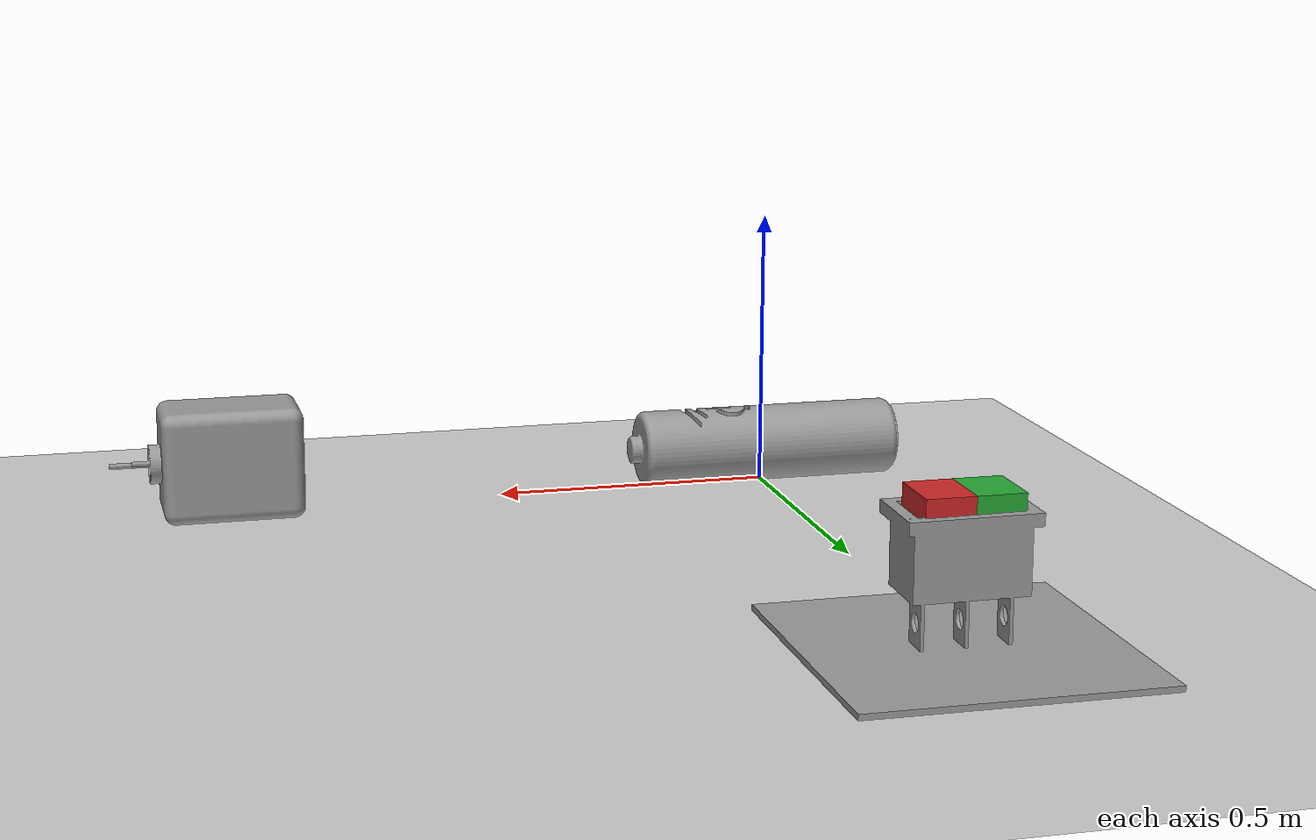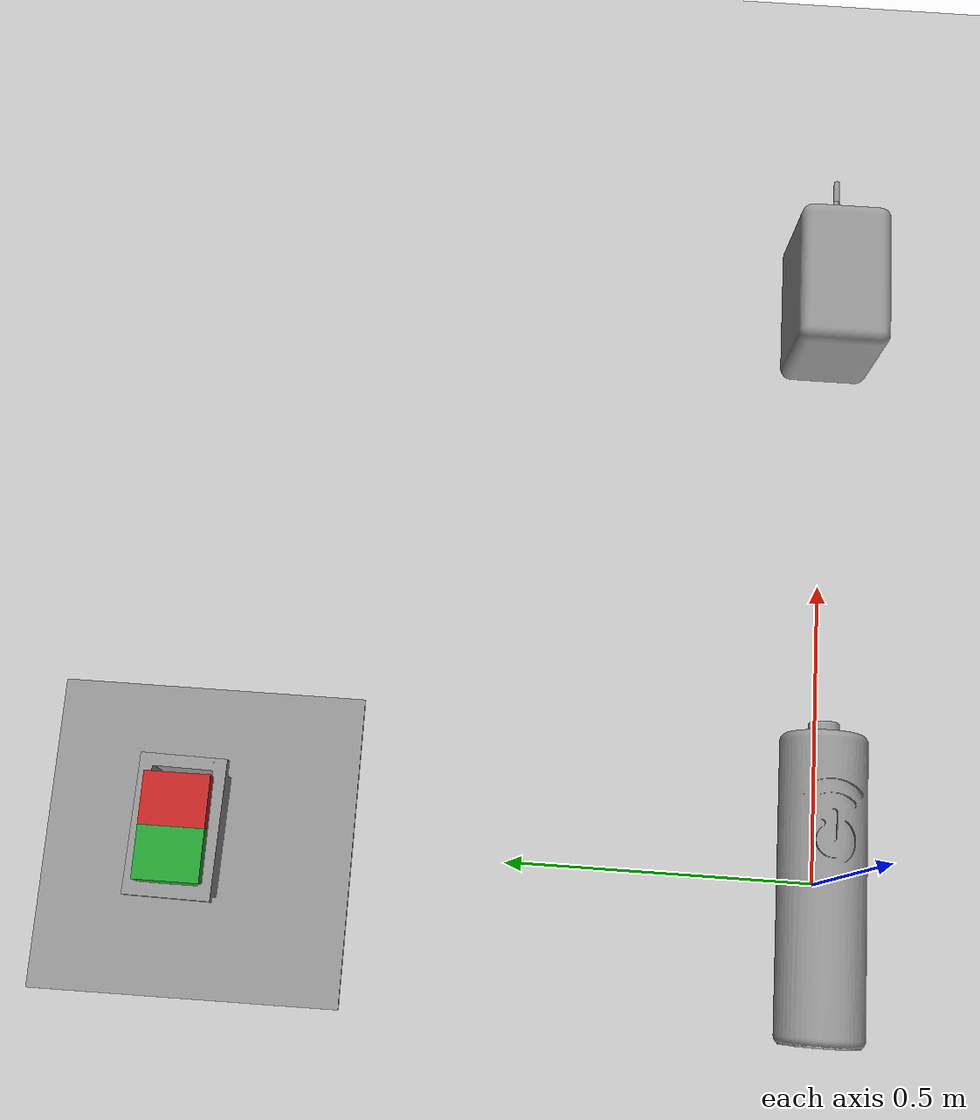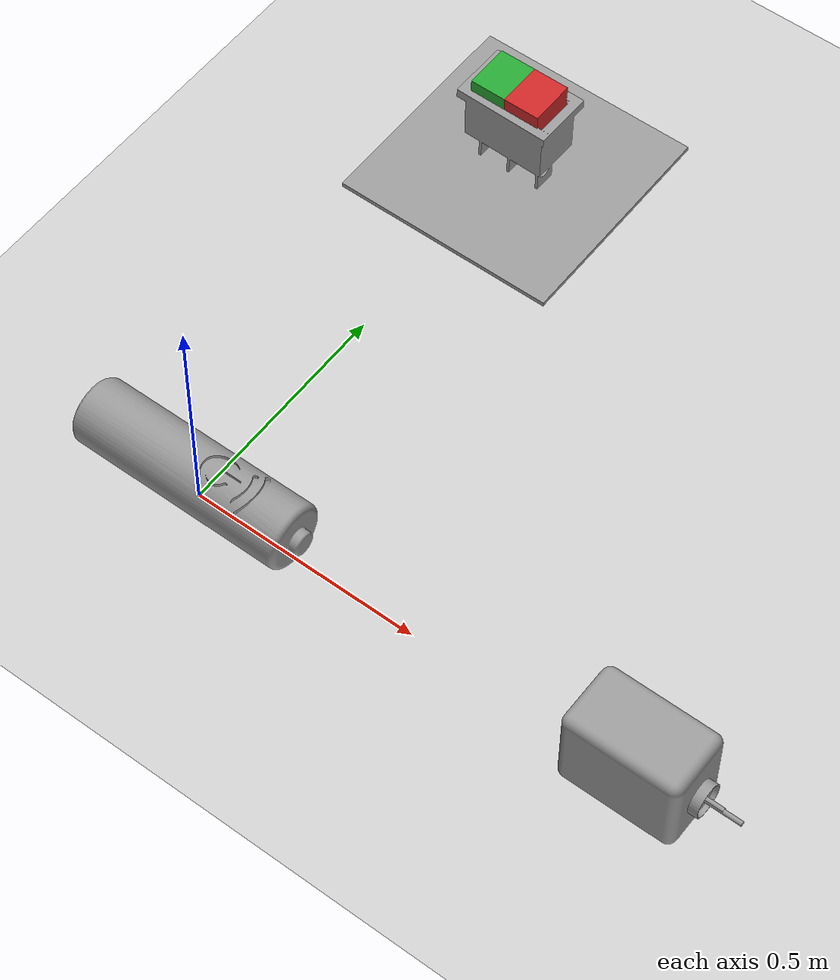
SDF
<?xml version="1.0" ?>
<sdf version="1.5">
  <world name="default">

    <!-- A global light source -->
    <include>
      <uri>model://sun</uri>
    </include>

    <!-- A ground plane -->
    <include>
      <uri>model://ground_plane</uri>
    </include>

    <model name="circuit">

      <link name="circuit_link">
        <collision name="circuit_collision">
          <pose>0 0 0.05 0 0 0</pose>
          <geometry>
            <box>
              <size>0.1 0.1 0.1</size>
            </box>
          </geometry>
        </collision>
      </link>

      <!-- ======================battery====================== -->

      <model name="AA_battery">
        <pose>0 0 0.07 0 0 0</pose>
        <link name="link">
          <collision name="collision">
            <pose>0 0 0.0 0 0 0</pose>
            <geometry>
              <mesh>
                <uri>model://AA_battery/meshes/AA_battery.dae</uri>
                <scale>0.01 0.01 0.01</scale>
              </mesh>
            </geometry>
          </collision>
          <visual name="visual">
            <pose>0 0 0.0 0 0 0</pose>
            <geometry>
              <mesh>
                <uri>model://AA_battery/meshes/AA_battery.dae</uri>
                <scale>0.01 0.01 0.01</scale>
              </mesh>
            </geometry>
            <material>
              <script>
                <uri>file://media/materials/scripts/gazebo.material</uri>
                <name>Gazebo/Grey</name>
              </script>
            </material>
          </visual>
        </link>
        <plugin filename="libPowerSourcePlugin.so" name="battery">
          <port>
            <name>positive</name>
            <type>electrical</type>
          </port>
          <port>
            <name>negative</name>
            <type>electrical</type>
          </port>
          <properties>
            <voltage>1.5</voltage>   <!-- Volts -->
           <capacity>0.30</capacity> <!-- Amp-hours  -->
            <current>0.1</current>   <!-- Amps -->
          </properties>
        </plugin>
      </model>

      <!-- ======================motor====================== -->

      <model name="motor">
        <pose>1 0 0.1 0 0 0</pose>
        <link name="link">
          <self_collide>false</self_collide>
          <collision name="collision">
            <pose>0 0 0.0 0 0 0</pose>
            <geometry>
              <mesh>
                <uri>model://motor/meshes/motor.dae</uri>
                <scale>0.01 0.01 0.01</scale>
              </mesh>
            </geometry>
          </collision>
          <visual name="visual">
            <pose>0 0 0.0 0 0 0</pose>
            <geometry>
              <mesh>
                <uri>model://motor/meshes/motor.dae</uri>
                <scale>0.01 0.01 0.01</scale>
              </mesh>
            </geometry>
            <material>
              <script>
                <uri>file://media/materials/scripts/gazebo.material</uri>
                <name>Gazebo/Grey</name>
              </script>
            </material>
          </visual>
        </link>

        <link name="motor_core_link">
          <pose>0.02 0 0.0 0 1.57 0</pose>
          <self_collide>false</self_collide>
          <gravity>false</gravity>
          <collision name="collision">
            <pose>0 0 0.0 0 0 0</pose>
            <geometry>
              <cylinder>
                <radius>0.05</radius>
                <length>0.05</length>
              </cylinder>
            </geometry>
          </collision>
          <visual name="visual">
            <pose>0 0 0.0 0 0 0</pose>
            <geometry>
              <cylinder>
                <radius>0.05</radius>
                <length>0.05</length>
              </cylinder>
            </geometry>
            <material>
              <script>
                <uri>file://media/materials/scripts/gazebo.material</uri>
                <name>Gazebo/Grey</name>
              </script>
            </material>
          </visual>
        </link>

        <link name="motor_shaft_link">
          <pose>0.02 0 0.0 0 1.57 0</pose>
          <self_collide>false</self_collide>
          <gravity>false</gravity>
          <collision name="collision">
            <pose>0 0 0.0 0 0 0</pose>
            <geometry>
              <cylinder>
                <radius>0.005</radius>
                <length>0.30</length>
              </cylinder>
            </geometry>
          </collision>
          <visual name="visual">
            <pose>0 0 0.0 0 0 0</pose>
            <geometry>
              <cylinder>
                <radius>0.005</radius>
                <length>0.30</length>
              </cylinder>
            </geometry>
            <material>
              <script>
                <uri>file://media/materials/scripts/gazebo.material</uri>
                <name>Gazebo/Grey</name>
              </script>
            </material>
          </visual>
        </link>

        <joint name="motor_shaft_joint" type="revolute">
          <parent>motor_core_link</parent>
          <child>motor_shaft_link</child>
          <axis>
            <xyz>0 0 1</xyz>
            <limit>
              <lower>-1000000</lower>
              <upper>1000000</upper>
            </limit>
          </axis>
        </joint>

        <joint name="motor_joint" type="revolute">
          <parent>motor_core_link</parent>
          <child>link</child>
          <axis>
            <xyz>0 0 1</xyz>
            <limit>
              <lower>0</lower>
              <upper>0</upper>
            </limit>
          </axis>
        </joint>

        <plugin filename="libMotorPlugin.so" name="motor">
          <port>
            <name>shaft</name>
            <type>mechanical</type>
          </port>
          <port>
            <name>connector0</name>
            <type>electrical</type>
          </port>
          <port>
            <name>connector1</name>
            <type>electrical</type>
          </port>

          <properties>
            <resistance>5</resistance>
            <back_emf>0.0064</back_emf>
            <torque_constant>0.0064</torque_constant>
          </properties>

          <shaft_joint>motor_shaft_joint</shaft_joint>
        </plugin>

      </model>

      <!-- ======================switch====================== -->

      <model name="switch">
        <pose>0 1 0.155 0 3.14 0</pose>
        <link name="body">
          <collision name="collision">
            <pose>0 0 0.0 0 0 0</pose>
            <geometry>
              <mesh>
                <uri>model://power_switch/meshes/switch_no_button.dae</uri>
                <scale>0.01 0.01 0.01</scale>
              </mesh>
            </geometry>
          </collision>
          <visual name="visual">
            <pose>0 0 0.0 0 0 0</pose>
            <geometry>
              <mesh>
                <uri>model://power_switch/meshes/switch_no_button.dae</uri>
                <scale>0.01 0.01 0.01</scale>
              </mesh>
            </geometry>
            <material>
              <script>
                <uri>file://media/materials/scripts/gazebo.material</uri>
                <name>Gazebo/Grey</name>
              </script>
            </material>
          </visual>
        </link>

        <link name="stand">
          <pose>0 0 0.15 0 0 0</pose>
          <collision name="collision">
            <geometry>
              <box>
                <size>0.5 0.5 0.01</size>
              </box>
            </geometry>
          </collision>
          <visual name="visual">
            <pose>0 0 0.0 0 0 0</pose>
            <geometry>
              <box>
                <size>0.5 0.5 0.01</size>
              </box>
            </geometry>
            <material>
              <script>
                <uri>file://media/materials/scripts/gazebo.material</uri>
                <name>Gazebo/Grey</name>
              </script>
            </material>
          </visual>
        </link>

        <link name="button">
          <pose>0.0 0.0 -0.06 0 0.0 0</pose>
          <inertial>
            <mass>0.1</mass>
            <inertia>
              <ixx>0.1</ixx>
              <ixy>0</ixy>
              <ixz>0</ixz>
              <iyy>0.00006</iyy>
              <iyz>0</iyz>
              <izz>0.1</izz>
            </inertia>
          </inertial>
          <collision name="button">
            <geometry>
              <box>
                <size>0.16 0.1 0.08</size>
              </box>
            </geometry>
          </collision>
          <visual name="button_on">
            <pose>0.04 0 0 0 0 0</pose>
            <geometry>
              <box>
                <size>0.08 0.1 0.08</size>
              </box>
            </geometry>
            <material>
              <script>
                <name>Gazebo/Green</name>
              </script>
            </material>
          </visual>
          <visual name="button_off">
            <pose>-0.04 0 0 0 0 0</pose>
            <geometry>
              <box>
                <size>0.08 0.1 0.08</size>
              </box>
            </geometry>
            <material>
              <script>
                <name>Gazebo/Red</name>
              </script>
            </material>
          </visual>
        </link>

        <joint name="button_joint" type="revolute">
          <parent>body</parent>
          <child>button</child>
          <axis>
            <xyz>0.0 1.0 0.0</xyz>
            <limit>
              <lower>-0.3</lower>
              <upper>0.3</upper>
            </limit>
            <dynamics>
              <damping>0.01</damping>
            </dynamics>
            <use_parent_model_frame>true</use_parent_model_frame>
          </axis>
          <physics>
            <ode>
              <cfm_damping>1</cfm_damping>
            </ode>
          </physics>
        </joint>

        <joint name="stand_joint" type="revolute">
          <parent>body</parent>
          <child>stand</child>
          <axis>
            <xyz>0.0 0.0 1.0</xyz>
            <limit>
              <lower>-0.0</lower>
              <upper>0.0</upper>
            </limit>
            <use_parent_model_frame>true</use_parent_model_frame>
          </axis>
        </joint>

        <plugin filename="libSwitchPlugin.so" name="switch">
          <port>
            <name>connector0</name>
            <type>electrical</type>
          </port>
          <port>
            <name>connector1</name>
            <type>electrical</type>
          </port>
          <properties>
            <closed>false</closed>
          </properties>
          <switch_joint>button_joint</switch_joint>
        </plugin>
      </model>

      <plugin name="simple_connections" filename="libSimpleConnectionsPlugin.so">
        <connection>
          <source>AA_battery</source>
          <source_port>positive</source_port>
          <target>power_switch</target>
          <target_port>connector0</target_port>
        </connection>

        <connection>
          <source>power_switch</source>
          <source_port>connector1</source_port>
          <target>motor</target>
          <target_port>connector0</target_port>
        </connection>

        <connection>
          <source>motor</source>
          <source_port>connector1</source_port>
          <target>battery</target>
          <target_port>negative</target_port>
        </connection>
      </plugin>
    </model>

  </world>
</sdf>
